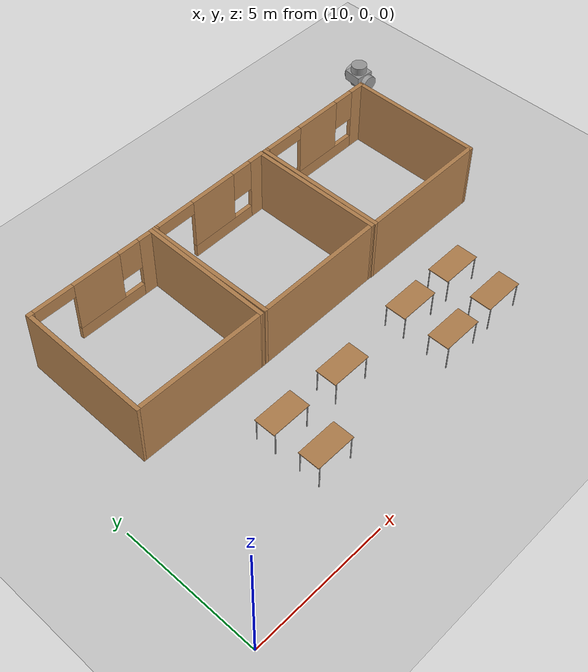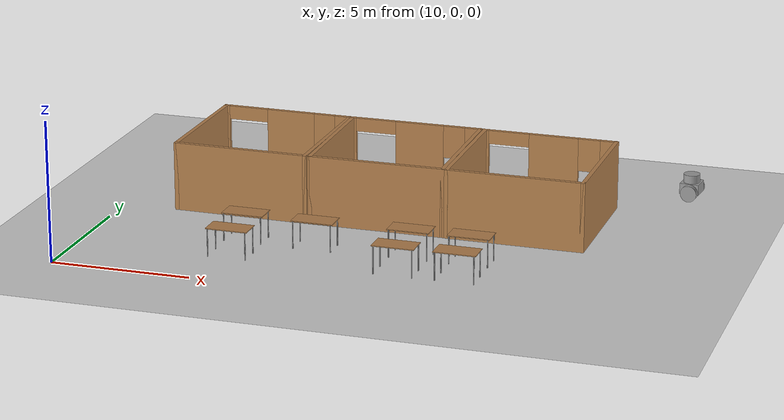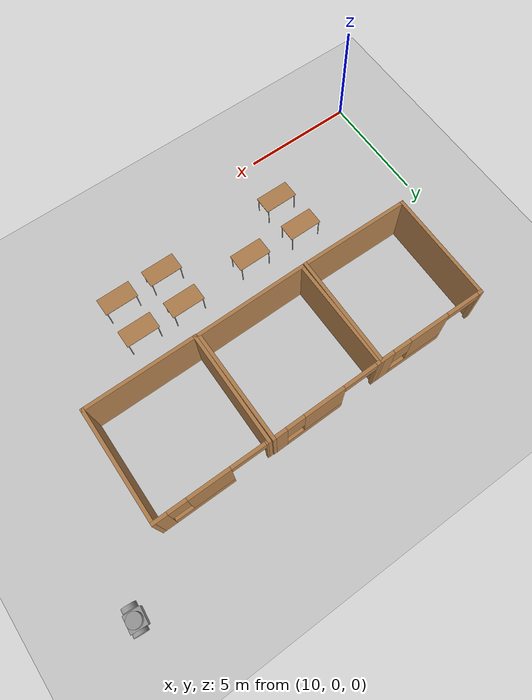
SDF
<sdf version="1.6">
 <world name="default">
  <model name="ground_plane">
   <static>1</static>
   <link name="link">
    <collision name="collision">
     <geometry><plane><normal>0 0 1</normal><size>100 100</size></plane></geometry>
     <surface>
      <contact><collide_bitmask>65535</collide_bitmask></contact>
      <friction><ode><mu>100</mu><mu2>50</mu2></ode></friction>
     </surface>
    </collision>
    <visual name="visual">
     <cast_shadows>0</cast_shadows>
     <geometry><plane><normal>0 0 1</normal><size>100 100</size></plane></geometry>
     <material>
      <script><uri>file://media/materials/scripts/gazebo.material</uri><name>Gazebo/Grey</name></script>
     </material>
    </visual>
   </link>
  </model>
  <model name="studio_2">
   <pose>14.4518 8.89939 0 0 -0 3.13147</pose>
   <link name="Wall_10">
    <collision name="Wall_10_Collision">
     <geometry><box><size>5 0.15 2.5</size></box></geometry>
     <pose>0 0 1.25 0 -0 0</pose>
    </collision>
    <visual name="Wall_10_Visual">
     <pose>0 0 1.25 0 -0 0</pose>
     <geometry><box><size>5 0.15 2.5</size></box></geometry>
     <material>
      <script><uri>file://media/materials/scripts/gazebo.material</uri><name>Gazebo/Wood</name></script>
      <ambient>1 1 1 1</ambient>
     </material>
     <meta><layer>0</layer></meta>
    </visual>
    <pose>0 2.42482 0 0 0 -7.3e-05</pose>
   </link>
   <link name="Wall_13">
    <collision name="Wall_13_Collision">
     <geometry><box><size>5 0.15 2.5</size></box></geometry>
     <pose>0 0 1.25 0 -0 0</pose>
    </collision>
    <visual name="Wall_13_Visual">
     <pose>0 0 1.25 0 -0 0</pose>
     <geometry><box><size>5 0.15 2.5</size></box></geometry>
     <material>
      <script><uri>file://media/materials/scripts/gazebo.material</uri><name>Gazebo/Wood</name></script>
      <ambient>1 1 1 1</ambient>
     </material>
     <meta><layer>0</layer></meta>
    </visual>
    <pose>-2.42502 -3e-06 0 0 0 -1.5708</pose>
   </link>
   <link name="Wall_15">
    <pose>-2e-05 -2.425 0 0 -0 0</pose>
    <visual name="Wall_15_Visual_0">
     <pose>-2.17395 0 1.25 0 -0 0</pose>
     <geometry><box><size>0.652095 0.15 2.5</size></box></geometry>
     <material>
      <script><uri>file://media/materials/scripts/gazebo.material</uri><name>Gazebo/Wood</name></script>
      <ambient>1 1 1 1</ambient>
     </material>
     <meta><layer>0</layer></meta>
    </visual>
    <collision name="Wall_15_Collision_0">
     <geometry><box><size>0.652095 0.15 2.5</size></box></geometry>
     <pose>-2.17395 0 1.25 0 -0 0</pose>
    </collision>
    <visual name="Wall_15_Visual_1">
     <pose>2.38574 0 1.25 0 -0 0</pose>
     <geometry><box><size>0.228515 0.15 2.5</size></box></geometry>
     <material>
      <script><uri>file://media/materials/scripts/gazebo.material</uri><name>Gazebo/Wood</name></script>
      <ambient>1 1 1 1</ambient>
     </material>
     <meta><layer>0</layer></meta>
    </visual>
    <collision name="Wall_15_Collision_1">
     <geometry><box><size>0.228515 0.15 2.5</size></box></geometry>
     <pose>2.38574 0 1.25 0 -0 0</pose>
    </collision>
    <visual name="Wall_15_Visual_2">
     <pose>-0.53821 0 0.25 0 -0 0</pose>
     <geometry><box><size>2.61939 0.15 0.5</size></box></geometry>
     <material>
      <script><uri>file://media/materials/scripts/gazebo.material</uri><name>Gazebo/Wood</name></script>
      <ambient>1 1 1 1</ambient>
     </material>
     <meta><layer>0</layer></meta>
    </visual>
    <collision name="Wall_15_Collision_2">
     <geometry><box><size>2.61939 0.15 0.5</size></box></geometry>
     <pose>-0.53821 0 0.25 0 -0 0</pose>
    </collision>
    <visual name="Wall_15_Visual_3">
     <pose>-0.13821 0 1.5 0 -0 0</pose>
     <geometry><box><size>1.81939 0.15 2</size></box></geometry>
     <material>
      <script><uri>file://media/materials/scripts/gazebo.material</uri><name>Gazebo/Wood</name></script>
      <ambient>1 1 1 1</ambient>
     </material>
     <meta><layer>0</layer></meta>
    </visual>
    <collision name="Wall_15_Collision_3">
     <geometry><box><size>1.81939 0.15 2</size></box></geometry>
     <pose>-0.13821 0 1.5 0 -0 0</pose>
    </collision>
    <visual name="Wall_15_Visual_4">
     <pose>-1.4479 0 1.9 0 -0 0</pose>
     <geometry><box><size>0.8 0.15 1.2</size></box></geometry>
     <material>
      <script><uri>file://media/materials/scripts/gazebo.material</uri><name>Gazebo/Wood</name></script>
      <ambient>1 1 1 1</ambient>
     </material>
     <meta><layer>0</layer></meta>
    </visual>
    <collision name="Wall_15_Collision_4">
     <geometry><box><size>0.8 0.15 1.2</size></box></geometry>
     <pose>-1.4479 0 1.9 0 -0 0</pose>
    </collision>
    <visual name="Wall_15_Visual_5">
     <pose>1.52148 0 2.25 0 -0 0</pose>
     <geometry><box><size>1.5 0.15 0.5</size></box></geometry>
     <material>
      <script><uri>file://media/materials/scripts/gazebo.material</uri><name>Gazebo/Wood</name></script>
      <ambient>1 1 1 1</ambient>
     </material>
     <meta><layer>0</layer></meta>
    </visual>
    <collision name="Wall_15_Collision_5">
     <geometry><box><size>1.5 0.15 0.5</size></box></geometry>
     <pose>1.52148 0 2.25 0 -0 0</pose>
    </collision>
   </link>
   <link name="Wall_16">
    <collision name="Wall_16_Collision">
     <geometry><box><size>4.99965 0.15 2.5</size></box></geometry>
     <pose>0 0 1.25 0 -0 0</pose>
    </collision>
    <visual name="Wall_16_Visual">
     <pose>0 0 1.25 0 -0 0</pose>
     <geometry><box><size>4.99965 0.15 2.5</size></box></geometry>
     <material>
      <script><uri>file://media/materials/scripts/gazebo.material</uri><name>Gazebo/Wood</name></script>
      <ambient>1 1 1 1</ambient>
     </material>
     <meta><layer>0</layer></meta>
    </visual>
    <pose>2.425 -0.00018 0 0 -0 1.57079</pose>
   </link>
   <static>1</static>
  </model>
  <model name="studio_3">
   <pose>19.4488 8.8882 0 0 0 -3.13599</pose>
   <link name="Wall_10">
    <collision name="Wall_10_Collision">
     <geometry><box><size>5 0.15 2.5</size></box></geometry>
     <pose>0 0 1.25 0 -0 0</pose>
    </collision>
    <visual name="Wall_10_Visual">
     <pose>0 0 1.25 0 -0 0</pose>
     <geometry><box><size>5 0.15 2.5</size></box></geometry>
     <material>
      <script><uri>file://media/materials/scripts/gazebo.material</uri><name>Gazebo/Wood</name></script>
      <ambient>1 1 1 1</ambient>
     </material>
     <meta><layer>0</layer></meta>
    </visual>
    <pose>0 2.42482 0 0 0 -7.3e-05</pose>
   </link>
   <link name="Wall_13">
    <collision name="Wall_13_Collision">
     <geometry><box><size>5 0.15 2.5</size></box></geometry>
     <pose>0 0 1.25 0 -0 0</pose>
    </collision>
    <visual name="Wall_13_Visual">
     <pose>0 0 1.25 0 -0 0</pose>
     <geometry><box><size>5 0.15 2.5</size></box></geometry>
     <material>
      <script><uri>file://media/materials/scripts/gazebo.material</uri><name>Gazebo/Wood</name></script>
      <ambient>1 1 1 1</ambient>
     </material>
     <meta><layer>0</layer></meta>
    </visual>
    <pose>-2.42502 -3e-06 0 0 0 -1.5708</pose>
   </link>
   <link name="Wall_15">
    <pose>-2e-05 -2.425 0 0 -0 0</pose>
    <visual name="Wall_15_Visual_0">
     <pose>-2.17395 0 1.25 0 -0 0</pose>
     <geometry><box><size>0.652095 0.15 2.5</size></box></geometry>
     <material>
      <script><uri>file://media/materials/scripts/gazebo.material</uri><name>Gazebo/Wood</name></script>
      <ambient>1 1 1 1</ambient>
     </material>
     <meta><layer>0</layer></meta>
    </visual>
    <collision name="Wall_15_Collision_0">
     <geometry><box><size>0.652095 0.15 2.5</size></box></geometry>
     <pose>-2.17395 0 1.25 0 -0 0</pose>
    </collision>
    <visual name="Wall_15_Visual_1">
     <pose>2.38574 0 1.25 0 -0 0</pose>
     <geometry><box><size>0.228515 0.15 2.5</size></box></geometry>
     <material>
      <script><uri>file://media/materials/scripts/gazebo.material</uri><name>Gazebo/Wood</name></script>
      <ambient>1 1 1 1</ambient>
     </material>
     <meta><layer>0</layer></meta>
    </visual>
    <collision name="Wall_15_Collision_1">
     <geometry><box><size>0.228515 0.15 2.5</size></box></geometry>
     <pose>2.38574 0 1.25 0 -0 0</pose>
    </collision>
    <visual name="Wall_15_Visual_2">
     <pose>-0.53821 0 0.25 0 -0 0</pose>
     <geometry><box><size>2.61939 0.15 0.5</size></box></geometry>
     <material>
      <script><uri>file://media/materials/scripts/gazebo.material</uri><name>Gazebo/Wood</name></script>
      <ambient>1 1 1 1</ambient>
     </material>
     <meta><layer>0</layer></meta>
    </visual>
    <collision name="Wall_15_Collision_2">
     <geometry><box><size>2.61939 0.15 0.5</size></box></geometry>
     <pose>-0.53821 0 0.25 0 -0 0</pose>
    </collision>
    <visual name="Wall_15_Visual_3">
     <pose>-0.13821 0 1.5 0 -0 0</pose>
     <geometry><box><size>1.81939 0.15 2</size></box></geometry>
     <material>
      <script><uri>file://media/materials/scripts/gazebo.material</uri><name>Gazebo/Wood</name></script>
      <ambient>1 1 1 1</ambient>
     </material>
     <meta><layer>0</layer></meta>
    </visual>
    <collision name="Wall_15_Collision_3">
     <geometry><box><size>1.81939 0.15 2</size></box></geometry>
     <pose>-0.13821 0 1.5 0 -0 0</pose>
    </collision>
    <visual name="Wall_15_Visual_4">
     <pose>-1.4479 0 1.9 0 -0 0</pose>
     <geometry><box><size>0.8 0.15 1.2</size></box></geometry>
     <material>
      <script><uri>file://media/materials/scripts/gazebo.material</uri><name>Gazebo/Wood</name></script>
      <ambient>1 1 1 1</ambient>
     </material>
     <meta><layer>0</layer></meta>
    </visual>
    <collision name="Wall_15_Collision_4">
     <geometry><box><size>0.8 0.15 1.2</size></box></geometry>
     <pose>-1.4479 0 1.9 0 -0 0</pose>
    </collision>
    <visual name="Wall_15_Visual_5">
     <pose>1.52148 0 2.25 0 -0 0</pose>
     <geometry><box><size>1.5 0.15 0.5</size></box></geometry>
     <material>
      <script><uri>file://media/materials/scripts/gazebo.material</uri><name>Gazebo/Wood</name></script>
      <ambient>1 1 1 1</ambient>
     </material>
     <meta><layer>0</layer></meta>
    </visual>
    <collision name="Wall_15_Collision_5">
     <geometry><box><size>1.5 0.15 0.5</size></box></geometry>
     <pose>1.52148 0 2.25 0 -0 0</pose>
    </collision>
   </link>
   <link name="Wall_16">
    <collision name="Wall_16_Collision">
     <geometry><box><size>4.99965 0.15 2.5</size></box></geometry>
     <pose>0 0 1.25 0 -0 0</pose>
    </collision>
    <visual name="Wall_16_Visual">
     <pose>0 0 1.25 0 -0 0</pose>
     <geometry><box><size>4.99965 0.15 2.5</size></box></geometry>
     <material>
      <script><uri>file://media/materials/scripts/gazebo.material</uri><name>Gazebo/Wood</name></script>
      <ambient>1 1 1 1</ambient>
     </material>
     <meta><layer>0</layer></meta>
    </visual>
    <pose>2.425 -0.00018 0 0 -0 1.57079</pose>
   </link>
   <static>1</static>
  </model>
  <model name="studio_4">
   <pose>24.4587 8.87701 0 0 -0 3.14047</pose>
   <link name="Wall_10">
    <collision name="Wall_10_Collision">
     <geometry><box><size>5 0.15 2.5</size></box></geometry>
     <pose>0 0 1.25 0 -0 0</pose>
    </collision>
    <visual name="Wall_10_Visual">
     <pose>0 0 1.25 0 -0 0</pose>
     <geometry><box><size>5 0.15 2.5</size></box></geometry>
     <material>
      <script><uri>file://media/materials/scripts/gazebo.material</uri><name>Gazebo/Wood</name></script>
      <ambient>1 1 1 1</ambient>
     </material>
     <meta><layer>0</layer></meta>
    </visual>
    <pose>0 2.42482 0 0 0 -7.3e-05</pose>
   </link>
   <link name="Wall_13">
    <collision name="Wall_13_Collision">
     <geometry><box><size>5 0.15 2.5</size></box></geometry>
     <pose>0 0 1.25 0 -0 0</pose>
    </collision>
    <visual name="Wall_13_Visual">
     <pose>0 0 1.25 0 -0 0</pose>
     <geometry><box><size>5 0.15 2.5</size></box></geometry>
     <material>
      <script><uri>file://media/materials/scripts/gazebo.material</uri><name>Gazebo/Wood</name></script>
      <ambient>1 1 1 1</ambient>
     </material>
     <meta><layer>0</layer></meta>
    </visual>
    <pose>-2.42502 -3e-06 0 0 0 -1.5708</pose>
   </link>
   <link name="Wall_15">
    <pose>-2e-05 -2.425 0 0 -0 0</pose>
    <visual name="Wall_15_Visual_0">
     <pose>-2.17395 0 1.25 0 -0 0</pose>
     <geometry><box><size>0.652095 0.15 2.5</size></box></geometry>
     <material>
      <script><uri>file://media/materials/scripts/gazebo.material</uri><name>Gazebo/Wood</name></script>
      <ambient>1 1 1 1</ambient>
     </material>
     <meta><layer>0</layer></meta>
    </visual>
    <collision name="Wall_15_Collision_0">
     <geometry><box><size>0.652095 0.15 2.5</size></box></geometry>
     <pose>-2.17395 0 1.25 0 -0 0</pose>
    </collision>
    <visual name="Wall_15_Visual_1">
     <pose>2.38574 0 1.25 0 -0 0</pose>
     <geometry><box><size>0.228515 0.15 2.5</size></box></geometry>
     <material>
      <script><uri>file://media/materials/scripts/gazebo.material</uri><name>Gazebo/Wood</name></script>
      <ambient>1 1 1 1</ambient>
     </material>
     <meta><layer>0</layer></meta>
    </visual>
    <collision name="Wall_15_Collision_1">
     <geometry><box><size>0.228515 0.15 2.5</size></box></geometry>
     <pose>2.38574 0 1.25 0 -0 0</pose>
    </collision>
    <visual name="Wall_15_Visual_2">
     <pose>-0.53821 0 0.25 0 -0 0</pose>
     <geometry><box><size>2.61939 0.15 0.5</size></box></geometry>
     <material>
      <script><uri>file://media/materials/scripts/gazebo.material</uri><name>Gazebo/Wood</name></script>
      <ambient>1 1 1 1</ambient>
     </material>
     <meta><layer>0</layer></meta>
    </visual>
    <collision name="Wall_15_Collision_2">
     <geometry><box><size>2.61939 0.15 0.5</size></box></geometry>
     <pose>-0.53821 0 0.25 0 -0 0</pose>
    </collision>
    <visual name="Wall_15_Visual_3">
     <pose>-0.13821 0 1.5 0 -0 0</pose>
     <geometry><box><size>1.81939 0.15 2</size></box></geometry>
     <material>
      <script><uri>file://media/materials/scripts/gazebo.material</uri><name>Gazebo/Wood</name></script>
      <ambient>1 1 1 1</ambient>
     </material>
     <meta><layer>0</layer></meta>
    </visual>
    <collision name="Wall_15_Collision_3">
     <geometry><box><size>1.81939 0.15 2</size></box></geometry>
     <pose>-0.13821 0 1.5 0 -0 0</pose>
    </collision>
    <visual name="Wall_15_Visual_4">
     <pose>-1.4479 0 1.9 0 -0 0</pose>
     <geometry><box><size>0.8 0.15 1.2</size></box></geometry>
     <material>
      <script><uri>file://media/materials/scripts/gazebo.material</uri><name>Gazebo/Wood</name></script>
      <ambient>1 1 1 1</ambient>
     </material>
     <meta><layer>0</layer></meta>
    </visual>
    <collision name="Wall_15_Collision_4">
     <geometry><box><size>0.8 0.15 1.2</size></box></geometry>
     <pose>-1.4479 0 1.9 0 -0 0</pose>
    </collision>
    <visual name="Wall_15_Visual_5">
     <pose>1.52148 0 2.25 0 -0 0</pose>
     <geometry><box><size>1.5 0.15 0.5</size></box></geometry>
     <material>
      <script><uri>file://media/materials/scripts/gazebo.material</uri><name>Gazebo/Wood</name></script>
      <ambient>1 1 1 1</ambient>
     </material>
     <meta><layer>0</layer></meta>
    </visual>
    <collision name="Wall_15_Collision_5">
     <geometry><box><size>1.5 0.15 0.5</size></box></geometry>
     <pose>1.52148 0 2.25 0 -0 0</pose>
    </collision>
   </link>
   <link name="Wall_16">
    <collision name="Wall_16_Collision">
     <geometry><box><size>4.99965 0.15 2.5</size></box></geometry>
     <pose>0 0 1.25 0 -0 0</pose>
    </collision>
    <visual name="Wall_16_Visual">
     <pose>0 0 1.25 0 -0 0</pose>
     <geometry><box><size>4.99965 0.15 2.5</size></box></geometry>
     <material>
      <script><uri>file://media/materials/scripts/gazebo.material</uri><name>Gazebo/Wood</name></script>
      <ambient>1 1 1 1</ambient>
     </material>
     <meta><layer>0</layer></meta>
    </visual>
    <pose>2.425 -0.00018 0 0 -0 1.57079</pose>
   </link>
   <static>1</static>
  </model>
  <model name="table_1">
   <static>1</static>
   <link name="link">
    <collision name="surface">
     <pose>0 0 1 0 -0 0</pose>
     <geometry><box><size>1.5 0.8 0.03</size></box></geometry>
     <surface><friction><ode><mu>0.6</mu><mu2>0.6</mu2></ode></friction></surface>
    </collision>
    <visual name="visual1">
     <pose>0 0 1 0 -0 0</pose>
     <geometry><box><size>1.5 0.8 0.03</size></box></geometry>
     <material>
      <script><uri>file://media/materials/scripts/gazebo.material</uri><name>Gazebo/Wood</name></script>
     </material>
    </visual>
    <collision name="front_left_leg">
     <pose>0.68 0.38 0.5 0 -0 0</pose>
     <geometry><cylinder><radius>0.02</radius><length>1</length></cylinder></geometry>
    </collision>
    <visual name="front_left_leg">
     <pose>0.68 0.38 0.5 0 -0 0</pose>
     <geometry><cylinder><radius>0.02</radius><length>1</length></cylinder></geometry>
     <material>
      <script><uri>file://media/materials/scripts/gazebo.material</uri><name>Gazebo/Grey</name></script>
     </material>
    </visual>
    <collision name="front_right_leg">
     <pose>0.68 -0.38 0.5 0 -0 0</pose>
     <geometry><cylinder><radius>0.02</radius><length>1</length></cylinder></geometry>
    </collision>
    <visual name="front_right_leg">
     <pose>0.68 -0.38 0.5 0 -0 0</pose>
     <geometry><cylinder><radius>0.02</radius><length>1</length></cylinder></geometry>
     <material>
      <script><uri>file://media/materials/scripts/gazebo.material</uri><name>Gazebo/Grey</name></script>
     </material>
    </visual>
    <collision name="back_right_leg">
     <pose>-0.68 -0.38 0.5 0 -0 0</pose>
     <geometry><cylinder><radius>0.02</radius><length>1</length></cylinder></geometry>
    </collision>
    <visual name="back_right_leg">
     <pose>-0.68 -0.38 0.5 0 -0 0</pose>
     <geometry><cylinder><radius>0.02</radius><length>1</length></cylinder></geometry>
     <material>
      <script><uri>file://media/materials/scripts/gazebo.material</uri><name>Gazebo/Grey</name></script>
     </material>
    </visual>
    <collision name="back_left_leg">
     <pose>-0.68 0.38 0.5 0 -0 0</pose>
     <geometry><cylinder><radius>0.02</radius><length>1</length></cylinder></geometry>
    </collision>
    <visual name="back_left_leg">
     <pose>-0.68 0.38 0.5 0 -0 0</pose>
     <geometry><cylinder><radius>0.02</radius><length>1</length></cylinder></geometry>
     <material>
      <script><uri>file://media/materials/scripts/gazebo.material</uri><name>Gazebo/Grey</name></script>
     </material>
    </visual>
   </link>
   <pose>23.5484 2.64432 0 0 -0 0</pose>
  </model>
  <model name="table_2">
   <static>1</static>
   <link name="link">
    <collision name="surface">
     <pose>0 0 1 0 -0 0</pose>
     <geometry><box><size>1.5 0.8 0.03</size></box></geometry>
     <surface><friction><ode><mu>0.6</mu><mu2>0.6</mu2></ode></friction></surface>
    </collision>
    <visual name="visual1">
     <pose>0 0 1 0 -0 0</pose>
     <geometry><box><size>1.5 0.8 0.03</size></box></geometry>
     <material>
      <script><uri>file://media/materials/scripts/gazebo.material</uri><name>Gazebo/Wood</name></script>
     </material>
    </visual>
    <collision name="front_left_leg">
     <pose>0.68 0.38 0.5 0 -0 0</pose>
     <geometry><cylinder><radius>0.02</radius><length>1</length></cylinder></geometry>
    </collision>
    <visual name="front_left_leg">
     <pose>0.68 0.38 0.5 0 -0 0</pose>
     <geometry><cylinder><radius>0.02</radius><length>1</length></cylinder></geometry>
     <material>
      <script><uri>file://media/materials/scripts/gazebo.material</uri><name>Gazebo/Grey</name></script>
     </material>
    </visual>
    <collision name="front_right_leg">
     <pose>0.68 -0.38 0.5 0 -0 0</pose>
     <geometry><cylinder><radius>0.02</radius><length>1</length></cylinder></geometry>
    </collision>
    <visual name="front_right_leg">
     <pose>0.68 -0.38 0.5 0 -0 0</pose>
     <geometry><cylinder><radius>0.02</radius><length>1</length></cylinder></geometry>
     <material>
      <script><uri>file://media/materials/scripts/gazebo.material</uri><name>Gazebo/Grey</name></script>
     </material>
    </visual>
    <collision name="back_right_leg">
     <pose>-0.68 -0.38 0.5 0 -0 0</pose>
     <geometry><cylinder><radius>0.02</radius><length>1</length></cylinder></geometry>
    </collision>
    <visual name="back_right_leg">
     <pose>-0.68 -0.38 0.5 0 -0 0</pose>
     <geometry><cylinder><radius>0.02</radius><length>1</length></cylinder></geometry>
     <material>
      <script><uri>file://media/materials/scripts/gazebo.material</uri><name>Gazebo/Grey</name></script>
     </material>
    </visual>
    <collision name="back_left_leg">
     <pose>-0.68 0.38 0.5 0 -0 0</pose>
     <geometry><cylinder><radius>0.02</radius><length>1</length></cylinder></geometry>
    </collision>
    <visual name="back_left_leg">
     <pose>-0.68 0.38 0.5 0 -0 0</pose>
     <geometry><cylinder><radius>0.02</radius><length>1</length></cylinder></geometry>
     <material>
      <script><uri>file://media/materials/scripts/gazebo.material</uri><name>Gazebo/Grey</name></script>
     </material>
    </visual>
   </link>
   <pose>23.5484 4.32933 0 0 -0 0</pose>
  </model>
  <model name="table_5">
   <static>1</static>
   <link name="link">
    <collision name="surface">
     <pose>0 0 1 0 -0 0</pose>
     <geometry><box><size>1.5 0.8 0.03</size></box></geometry>
     <surface><friction><ode><mu>0.6</mu><mu2>0.6</mu2></ode></friction></surface>
    </collision>
    <visual name="visual1">
     <pose>0 0 1 0 -0 0</pose>
     <geometry><box><size>1.5 0.8 0.03</size></box></geometry>
     <material>
      <script><uri>file://media/materials/scripts/gazebo.material</uri><name>Gazebo/Wood</name></script>
     </material>
    </visual>
    <collision name="front_left_leg">
     <pose>0.68 0.38 0.5 0 -0 0</pose>
     <geometry><cylinder><radius>0.02</radius><length>1</length></cylinder></geometry>
    </collision>
    <visual name="front_left_leg">
     <pose>0.68 0.38 0.5 0 -0 0</pose>
     <geometry><cylinder><radius>0.02</radius><length>1</length></cylinder></geometry>
     <material>
      <script><uri>file://media/materials/scripts/gazebo.material</uri><name>Gazebo/Grey</name></script>
     </material>
    </visual>
    <collision name="front_right_leg">
     <pose>0.68 -0.38 0.5 0 -0 0</pose>
     <geometry><cylinder><radius>0.02</radius><length>1</length></cylinder></geometry>
    </collision>
    <visual name="front_right_leg">
     <pose>0.68 -0.38 0.5 0 -0 0</pose>
     <geometry><cylinder><radius>0.02</radius><length>1</length></cylinder></geometry>
     <material>
      <script><uri>file://media/materials/scripts/gazebo.material</uri><name>Gazebo/Grey</name></script>
     </material>
    </visual>
    <collision name="back_right_leg">
     <pose>-0.68 -0.38 0.5 0 -0 0</pose>
     <geometry><cylinder><radius>0.02</radius><length>1</length></cylinder></geometry>
    </collision>
    <visual name="back_right_leg">
     <pose>-0.68 -0.38 0.5 0 -0 0</pose>
     <geometry><cylinder><radius>0.02</radius><length>1</length></cylinder></geometry>
     <material>
      <script><uri>file://media/materials/scripts/gazebo.material</uri><name>Gazebo/Grey</name></script>
     </material>
    </visual>
    <collision name="back_left_leg">
     <pose>-0.68 0.38 0.5 0 -0 0</pose>
     <geometry><cylinder><radius>0.02</radius><length>1</length></cylinder></geometry>
    </collision>
    <visual name="back_left_leg">
     <pose>-0.68 0.38 0.5 0 -0 0</pose>
     <geometry><cylinder><radius>0.02</radius><length>1</length></cylinder></geometry>
     <material>
      <script><uri>file://media/materials/scripts/gazebo.material</uri><name>Gazebo/Grey</name></script>
     </material>
    </visual>
   </link>
   <pose>21.4065 2.61417 0 0 -0 0</pose>
  </model>
  <model name="table_6">
   <static>1</static>
   <link name="link">
    <collision name="surface">
     <pose>0 0 1 0 -0 0</pose>
     <geometry><box><size>1.5 0.8 0.03</size></box></geometry>
     <surface><friction><ode><mu>0.6</mu><mu2>0.6</mu2></ode></friction></surface>
    </collision>
    <visual name="visual1">
     <pose>0 0 1 0 -0 0</pose>
     <geometry><box><size>1.5 0.8 0.03</size></box></geometry>
     <material>
      <script><uri>file://media/materials/scripts/gazebo.material</uri><name>Gazebo/Wood</name></script>
     </material>
    </visual>
    <collision name="front_left_leg">
     <pose>0.68 0.38 0.5 0 -0 0</pose>
     <geometry><cylinder><radius>0.02</radius><length>1</length></cylinder></geometry>
    </collision>
    <visual name="front_left_leg">
     <pose>0.68 0.38 0.5 0 -0 0</pose>
     <geometry><cylinder><radius>0.02</radius><length>1</length></cylinder></geometry>
     <material>
      <script><uri>file://media/materials/scripts/gazebo.material</uri><name>Gazebo/Grey</name></script>
     </material>
    </visual>
    <collision name="front_right_leg">
     <pose>0.68 -0.38 0.5 0 -0 0</pose>
     <geometry><cylinder><radius>0.02</radius><length>1</length></cylinder></geometry>
    </collision>
    <visual name="front_right_leg">
     <pose>0.68 -0.38 0.5 0 -0 0</pose>
     <geometry><cylinder><radius>0.02</radius><length>1</length></cylinder></geometry>
     <material>
      <script><uri>file://media/materials/scripts/gazebo.material</uri><name>Gazebo/Grey</name></script>
     </material>
    </visual>
    <collision name="back_right_leg">
     <pose>-0.68 -0.38 0.5 0 -0 0</pose>
     <geometry><cylinder><radius>0.02</radius><length>1</length></cylinder></geometry>
    </collision>
    <visual name="back_right_leg">
     <pose>-0.68 -0.38 0.5 0 -0 0</pose>
     <geometry><cylinder><radius>0.02</radius><length>1</length></cylinder></geometry>
     <material>
      <script><uri>file://media/materials/scripts/gazebo.material</uri><name>Gazebo/Grey</name></script>
     </material>
    </visual>
    <collision name="back_left_leg">
     <pose>-0.68 0.38 0.5 0 -0 0</pose>
     <geometry><cylinder><radius>0.02</radius><length>1</length></cylinder></geometry>
    </collision>
    <visual name="back_left_leg">
     <pose>-0.68 0.38 0.5 0 -0 0</pose>
     <geometry><cylinder><radius>0.02</radius><length>1</length></cylinder></geometry>
     <material>
      <script><uri>file://media/materials/scripts/gazebo.material</uri><name>Gazebo/Grey</name></script>
     </material>
    </visual>
   </link>
   <pose>21.4065 4.32933 0 0 -0 0</pose>
  </model>
  <model name="table_clone_clone_clone_clone">
   <static>1</static>
   <link name="link">
    <collision name="surface">
     <pose>0 0 1 0 -0 0</pose>
     <geometry><box><size>1.5 0.8 0.03</size></box></geometry>
     <surface><friction><ode><mu>0.6</mu><mu2>0.6</mu2></ode></friction></surface>
    </collision>
    <visual name="visual1">
     <pose>0 0 1 0 -0 0</pose>
     <geometry><box><size>1.5 0.8 0.03</size></box></geometry>
     <material>
      <script><uri>file://media/materials/scripts/gazebo.material</uri><name>Gazebo/Wood</name></script>
     </material>
    </visual>
    <collision name="front_left_leg">
     <pose>0.68 0.38 0.5 0 -0 0</pose>
     <geometry><cylinder><radius>0.02</radius><length>1</length></cylinder></geometry>
    </collision>
    <visual name="front_left_leg">
     <pose>0.68 0.38 0.5 0 -0 0</pose>
     <geometry><cylinder><radius>0.02</radius><length>1</length></cylinder></geometry>
     <material>
      <script><uri>file://media/materials/scripts/gazebo.material</uri><name>Gazebo/Grey</name></script>
     </material>
    </visual>
    <collision name="front_right_leg">
     <pose>0.68 -0.38 0.5 0 -0 0</pose>
     <geometry><cylinder><radius>0.02</radius><length>1</length></cylinder></geometry>
    </collision>
    <visual name="front_right_leg">
     <pose>0.68 -0.38 0.5 0 -0 0</pose>
     <geometry><cylinder><radius>0.02</radius><length>1</length></cylinder></geometry>
     <material>
      <script><uri>file://media/materials/scripts/gazebo.material</uri><name>Gazebo/Grey</name></script>
     </material>
    </visual>
    <collision name="back_right_leg">
     <pose>-0.68 -0.38 0.5 0 -0 0</pose>
     <geometry><cylinder><radius>0.02</radius><length>1</length></cylinder></geometry>
    </collision>
    <visual name="back_right_leg">
     <pose>-0.68 -0.38 0.5 0 -0 0</pose>
     <geometry><cylinder><radius>0.02</radius><length>1</length></cylinder></geometry>
     <material>
      <script><uri>file://media/materials/scripts/gazebo.material</uri><name>Gazebo/Grey</name></script>
     </material>
    </visual>
    <collision name="back_left_leg">
     <pose>-0.68 0.38 0.5 0 -0 0</pose>
     <geometry><cylinder><radius>0.02</radius><length>1</length></cylinder></geometry>
    </collision>
    <visual name="back_left_leg">
     <pose>-0.68 0.38 0.5 0 -0 0</pose>
     <geometry><cylinder><radius>0.02</radius><length>1</length></cylinder></geometry>
     <material>
      <script><uri>file://media/materials/scripts/gazebo.material</uri><name>Gazebo/Grey</name></script>
     </material>
    </visual>
   </link>
   <pose>18.0095 4.16806 0 0 -0 0</pose>
  </model>
  <model name="table_7">
   <static>1</static>
   <link name="link">
    <collision name="surface">
     <pose>0 0 1 0 -0 0</pose>
     <geometry><box><size>1.5 0.8 0.03</size></box></geometry>
     <surface><friction><ode><mu>0.6</mu><mu2>0.6</mu2></ode></friction></surface>
    </collision>
    <visual name="visual1">
     <pose>0 0 1 0 -0 0</pose>
     <geometry><box><size>1.5 0.8 0.03</size></box></geometry>
     <material>
      <script><uri>file://media/materials/scripts/gazebo.material</uri><name>Gazebo/Wood</name></script>
     </material>
    </visual>
    <collision name="front_left_leg">
     <pose>0.68 0.38 0.5 0 -0 0</pose>
     <geometry><cylinder><radius>0.02</radius><length>1</length></cylinder></geometry>
    </collision>
    <visual name="front_left_leg">
     <pose>0.68 0.38 0.5 0 -0 0</pose>
     <geometry><cylinder><radius>0.02</radius><length>1</length></cylinder></geometry>
     <material>
      <script><uri>file://media/materials/scripts/gazebo.material</uri><name>Gazebo/Grey</name></script>
     </material>
    </visual>
    <collision name="front_right_leg">
     <pose>0.68 -0.38 0.5 0 -0 0</pose>
     <geometry><cylinder><radius>0.02</radius><length>1</length></cylinder></geometry>
    </collision>
    <visual name="front_right_leg">
     <pose>0.68 -0.38 0.5 0 -0 0</pose>
     <geometry><cylinder><radius>0.02</radius><length>1</length></cylinder></geometry>
     <material>
      <script><uri>file://media/materials/scripts/gazebo.material</uri><name>Gazebo/Grey</name></script>
     </material>
    </visual>
    <collision name="back_right_leg">
     <pose>-0.68 -0.38 0.5 0 -0 0</pose>
     <geometry><cylinder><radius>0.02</radius><length>1</length></cylinder></geometry>
    </collision>
    <visual name="back_right_leg">
     <pose>-0.68 -0.38 0.5 0 -0 0</pose>
     <geometry><cylinder><radius>0.02</radius><length>1</length></cylinder></geometry>
     <material>
      <script><uri>file://media/materials/scripts/gazebo.material</uri><name>Gazebo/Grey</name></script>
     </material>
    </visual>
    <collision name="back_left_leg">
     <pose>-0.68 0.38 0.5 0 -0 0</pose>
     <geometry><cylinder><radius>0.02</radius><length>1</length></cylinder></geometry>
    </collision>
    <visual name="back_left_leg">
     <pose>-0.68 0.38 0.5 0 -0 0</pose>
     <geometry><cylinder><radius>0.02</radius><length>1</length></cylinder></geometry>
     <material>
      <script><uri>file://media/materials/scripts/gazebo.material</uri><name>Gazebo/Grey</name></script>
     </material>
    </visual>
   </link>
   <pose>15.5079 2.54393 0 0 -0 0</pose>
  </model>
  <model name="table_8">
   <static>1</static>
   <link name="link">
    <collision name="surface">
     <pose>0 0 1 0 -0 0</pose>
     <geometry><box><size>1.5 0.8 0.03</size></box></geometry>
     <surface><friction><ode><mu>0.6</mu><mu2>0.6</mu2></ode></friction></surface>
    </collision>
    <visual name="visual1">
     <pose>0 0 1 0 -0 0</pose>
     <geometry><box><size>1.5 0.8 0.03</size></box></geometry>
     <material>
      <script><uri>file://media/materials/scripts/gazebo.material</uri><name>Gazebo/Wood</name></script>
     </material>
    </visual>
    <collision name="front_left_leg">
     <pose>0.68 0.38 0.5 0 -0 0</pose>
     <geometry><cylinder><radius>0.02</radius><length>1</length></cylinder></geometry>
    </collision>
    <visual name="front_left_leg">
     <pose>0.68 0.38 0.5 0 -0 0</pose>
     <geometry><cylinder><radius>0.02</radius><length>1</length></cylinder></geometry>
     <material>
      <script><uri>file://media/materials/scripts/gazebo.material</uri><name>Gazebo/Grey</name></script>
     </material>
    </visual>
    <collision name="front_right_leg">
     <pose>0.68 -0.38 0.5 0 -0 0</pose>
     <geometry><cylinder><radius>0.02</radius><length>1</length></cylinder></geometry>
    </collision>
    <visual name="front_right_leg">
     <pose>0.68 -0.38 0.5 0 -0 0</pose>
     <geometry><cylinder><radius>0.02</radius><length>1</length></cylinder></geometry>
     <material>
      <script><uri>file://media/materials/scripts/gazebo.material</uri><name>Gazebo/Grey</name></script>
     </material>
    </visual>
    <collision name="back_right_leg">
     <pose>-0.68 -0.38 0.5 0 -0 0</pose>
     <geometry><cylinder><radius>0.02</radius><length>1</length></cylinder></geometry>
    </collision>
    <visual name="back_right_leg">
     <pose>-0.68 -0.38 0.5 0 -0 0</pose>
     <geometry><cylinder><radius>0.02</radius><length>1</length></cylinder></geometry>
     <material>
      <script><uri>file://media/materials/scripts/gazebo.material</uri><name>Gazebo/Grey</name></script>
     </material>
    </visual>
    <collision name="back_left_leg">
     <pose>-0.68 0.38 0.5 0 -0 0</pose>
     <geometry><cylinder><radius>0.02</radius><length>1</length></cylinder></geometry>
    </collision>
    <visual name="back_left_leg">
     <pose>-0.68 0.38 0.5 0 -0 0</pose>
     <geometry><cylinder><radius>0.02</radius><length>1</length></cylinder></geometry>
     <material>
      <script><uri>file://media/materials/scripts/gazebo.material</uri><name>Gazebo/Grey</name></script>
     </material>
    </visual>
   </link>
   <pose>15.4522 4.23346 0 0 -0 0</pose>
  </model>
  <model name="vacuumrobot_0_clone">
   <link name="link_0">
    <pose>-0.01 -0.018 0.01 0 -0 0</pose>
    <inertial>
     <mass>1</mass>
     <inertia>
      <ixx>0.166667</ixx>
      <ixy>0</ixy>
      <ixz>0</ixz>
      <iyy>0.166667</iyy>
      <iyz>0</iyz>
      <izz>0.166667</izz>
     </inertia>
    </inertial>
    <visual name="visual">
     <geometry><box><size>0.7 0.7 0.4</size></box></geometry>
     <material>
      <lighting>1</lighting>
      <script><uri>file://media/materials/scripts/gazebo.material</uri><name>Gazebo/Grey</name></script>
      <shader type="pixel"><normal_map>__default__</normal_map></shader>
      <ambient>0.3 0.3 0.3 1</ambient>
      <diffuse>0.7 0.7 0.7 1</diffuse>
      <specular>0.01 0.01 0.01 1</specular>
      <emissive>0 0 0 1</emissive>
     </material>
    </visual>
    <collision name="collision">
     <geometry><box><size>0.7 0.7 0.4</size></box></geometry>
     <surface>
      <friction>
       <ode><mu>1</mu><mu2>1</mu2><fdir1>0 0 0</fdir1><slip1>0</slip1><slip2>0</slip2></ode>
       <torsional>
        <coefficient>1</coefficient>
        <patch_radius>0</patch_radius>
        <surface_radius>0</surface_radius>
        <use_patch_radius>1</use_patch_radius>
        <ode><slip>0</slip></ode>
       </torsional>
      </friction>
      <bounce><restitution_coefficient>0</restitution_coefficient><threshold>1e+06</threshold></bounce>
      <contact>
       <collide_without_contact>0</collide_without_contact>
       <collide_without_contact_bitmask>1</collide_without_contact_bitmask>
       <collide_bitmask>1</collide_bitmask>
       <ode>
        <soft_cfm>0</soft_cfm>
        <soft_erp>0.2</soft_erp>
        <kp>1e+13</kp>
        <kd>1</kd>
        <max_vel>0.01</max_vel>
        <min_depth>0</min_depth>
       </ode>
       <bullet>
        <split_impulse>1</split_impulse>
        <split_impulse_penetration_threshold>-0.01</split_impulse_penetration_threshold>
        <soft_cfm>0</soft_cfm>
        <soft_erp>0.2</soft_erp>
        <kp>1e+13</kp>
        <kd>1</kd>
       </bullet>
      </contact>
     </surface>
    </collision>
   </link>
   <link name="link_1">
    <pose>-0.06 0.472029 -0.09 1.5707 -0 0</pose>
    <inertial>
     <mass>1</mass>
     <inertia><ixx>0.145833</ixx><ixy>0</ixy><ixz>0</ixz><iyy>0.145833</iyy><iyz>0</iyz><izz>0.125</izz></inertia>
    </inertial>
    <visual name="visual">
     <geometry><cylinder><radius>0.3</radius><length>0.2</length></cylinder></geometry>
     <material>
      <lighting>1</lighting>
      <script><uri>file://media/materials/scripts/gazebo.material</uri><name>Gazebo/Grey</name></script>
      <shader type="pixel"><normal_map>__default__</normal_map></shader>
      <ambient>0.3 0.3 0.3 1</ambient>
      <diffuse>0.7 0.7 0.7 1</diffuse>
      <specular>0.01 0.01 0.01 1</specular>
      <emissive>0 0 0 1</emissive>
     </material>
    </visual>
    <collision name="collision">
     <geometry><cylinder><radius>0.3</radius><length>0.2</length></cylinder></geometry>
     <surface>
      <friction>
       <ode><mu>1</mu><mu2>1</mu2><fdir1>0 0 0</fdir1><slip1>0</slip1><slip2>0</slip2></ode>
       <torsional>
        <coefficient>1</coefficient>
        <patch_radius>0</patch_radius>
        <surface_radius>0</surface_radius>
        <use_patch_radius>1</use_patch_radius>
        <ode><slip>0</slip></ode>
       </torsional>
      </friction>
      <bounce><restitution_coefficient>0</restitution_coefficient><threshold>1e+06</threshold></bounce>
      <contact>
       <collide_without_contact>0</collide_without_contact>
       <collide_without_contact_bitmask>1</collide_without_contact_bitmask>
       <collide_bitmask>1</collide_bitmask>
       <ode>
        <soft_cfm>0</soft_cfm>
        <soft_erp>0.2</soft_erp>
        <kp>1e+13</kp>
        <kd>1</kd>
        <max_vel>0.01</max_vel>
        <min_depth>0</min_depth>
       </ode>
       <bullet>
        <split_impulse>1</split_impulse>
        <split_impulse_penetration_threshold>-0.01</split_impulse_penetration_threshold>
        <soft_cfm>0</soft_cfm>
        <soft_erp>0.2</soft_erp>
        <kp>1e+13</kp>
        <kd>1</kd>
       </bullet>
      </contact>
     </surface>
    </collision>
   </link>
   <link name="link_1_clone">
    <pose>-0.06 -0.41803 -0.09 1.5707 -0 0</pose>
    <inertial>
     <mass>1</mass>
     <inertia><ixx>0.145833</ixx><ixy>0</ixy><ixz>0</ixz><iyy>0.145833</iyy><iyz>0</iyz><izz>0.125</izz></inertia>
    </inertial>
    <visual name="visual">
     <geometry><cylinder><radius>0.3</radius><length>0.2</length></cylinder></geometry>
     <material>
      <lighting>1</lighting>
      <script><uri>file://media/materials/scripts/gazebo.material</uri><name>Gazebo/Grey</name></script>
      <shader type="pixel"><normal_map>__default__</normal_map></shader>
      <ambient>0.3 0.3 0.3 1</ambient>
      <diffuse>0.7 0.7 0.7 1</diffuse>
      <specular>0.01 0.01 0.01 1</specular>
      <emissive>0 0 0 1</emissive>
     </material>
    </visual>
    <collision name="collision">
     <geometry><cylinder><radius>0.3</radius><length>0.2</length></cylinder></geometry>
     <surface>
      <friction>
       <ode><mu>1</mu><mu2>1</mu2><fdir1>0 0 0</fdir1><slip1>0</slip1><slip2>0</slip2></ode>
       <torsional>
        <coefficient>1</coefficient>
        <patch_radius>0</patch_radius>
        <surface_radius>0</surface_radius>
        <use_patch_radius>1</use_patch_radius>
        <ode><slip>0</slip></ode>
       </torsional>
      </friction>
      <bounce><restitution_coefficient>0</restitution_coefficient><threshold>1e+06</threshold></bounce>
      <contact>
       <collide_without_contact>0</collide_without_contact>
       <collide_without_contact_bitmask>1</collide_without_contact_bitmask>
       <collide_bitmask>1</collide_bitmask>
       <ode>
        <soft_cfm>0</soft_cfm>
        <soft_erp>0.2</soft_erp>
        <kp>1e+13</kp>
        <kd>1</kd>
        <max_vel>0.01</max_vel>
        <min_depth>0</min_depth>
       </ode>
       <bullet>
        <split_impulse>1</split_impulse>
        <split_impulse_penetration_threshold>-0.01</split_impulse_penetration_threshold>
        <soft_cfm>0</soft_cfm>
        <soft_erp>0.2</soft_erp>
        <kp>1e+13</kp>
        <kd>1</kd>
       </bullet>
      </contact>
     </surface>
    </collision>
   </link>
   <link name="link_2">
    <pose>0.14 -0.018 -0.19 0 -0 0</pose>
    <inertial>
     <mass>1</mass>
     <inertia><ixx>0.1</ixx><ixy>0</ixy><ixz>0</ixz><iyy>0.1</iyy><iyz>0</iyz><izz>0.1</izz></inertia>
    </inertial>
    <visual name="visual">
     <geometry><sphere><radius>0.2</radius></sphere></geometry>
     <material>
      <lighting>1</lighting>
      <script><uri>file://media/materials/scripts/gazebo.material</uri><name>Gazebo/Grey</name></script>
      <shader type="pixel"><normal_map>__default__</normal_map></shader>
      <ambient>0.3 0.3 0.3 1</ambient>
      <diffuse>0.7 0.7 0.7 1</diffuse>
      <specular>0.01 0.01 0.01 1</specular>
      <emissive>0 0 0 1</emissive>
     </material>
    </visual>
    <collision name="collision">
     <geometry><sphere><radius>0.2</radius></sphere></geometry>
     <surface>
      <friction>
       <ode><mu>1</mu><mu2>1</mu2><fdir1>0 0 0</fdir1><slip1>0</slip1><slip2>0</slip2></ode>
       <torsional>
        <coefficient>1</coefficient>
        <patch_radius>0</patch_radius>
        <surface_radius>0</surface_radius>
        <use_patch_radius>1</use_patch_radius>
        <ode><slip>0</slip></ode>
       </torsional>
      </friction>
      <bounce><restitution_coefficient>0</restitution_coefficient><threshold>1e+06</threshold></bounce>
      <contact>
       <collide_without_contact>0</collide_without_contact>
       <collide_without_contact_bitmask>1</collide_without_contact_bitmask>
       <collide_bitmask>1</collide_bitmask>
       <ode>
        <soft_cfm>0</soft_cfm>
        <soft_erp>0.2</soft_erp>
        <kp>1e+13</kp>
        <kd>1</kd>
        <max_vel>0.01</max_vel>
        <min_depth>0</min_depth>
       </ode>
       <bullet>
        <split_impulse>1</split_impulse>
        <split_impulse_penetration_threshold>-0.01</split_impulse_penetration_threshold>
        <soft_cfm>0</soft_cfm>
        <soft_erp>0.2</soft_erp>
        <kp>1e+13</kp>
        <kd>1</kd>
       </bullet>
      </contact>
     </surface>
    </collision>
   </link>
   <link name="link_3">
    <pose>-0.01 -0.018 0.36 0 -0 0</pose>
    <inertial>
     <mass>1</mass>
     <inertia><ixx>0.145833</ixx><ixy>0</ixy><ixz>0</ixz><iyy>0.145833</iyy><iyz>0</iyz><izz>0.125</izz></inertia>
    </inertial>
    <visual name="visual">
     <geometry><cylinder><radius>0.3</radius><length>0.3</length></cylinder></geometry>
     <material>
      <lighting>1</lighting>
      <script><uri>file://media/materials/scripts/gazebo.material</uri><name>Gazebo/Grey</name></script>
      <shader type="pixel"><normal_map>__default__</normal_map></shader>
      <ambient>0.3 0.3 0.3 1</ambient>
      <diffuse>0.7 0.7 0.7 1</diffuse>
      <specular>0.01 0.01 0.01 1</specular>
      <emissive>0 0 0 1</emissive>
     </material>
    </visual>
    <collision name="collision">
     <geometry><cylinder><radius>0.3</radius><length>0.3</length></cylinder></geometry>
     <surface>
      <friction>
       <ode><mu>1</mu><mu2>1</mu2><fdir1>0 0 0</fdir1><slip1>0</slip1><slip2>0</slip2></ode>
       <torsional>
        <coefficient>1</coefficient>
        <patch_radius>0</patch_radius>
        <surface_radius>0</surface_radius>
        <use_patch_radius>1</use_patch_radius>
        <ode><slip>0</slip></ode>
       </torsional>
      </friction>
      <bounce><restitution_coefficient>0</restitution_coefficient><threshold>1e+06</threshold></bounce>
      <contact>
       <collide_without_contact>0</collide_without_contact>
       <collide_without_contact_bitmask>1</collide_without_contact_bitmask>
       <collide_bitmask>1</collide_bitmask>
       <ode>
        <soft_cfm>0</soft_cfm>
        <soft_erp>0.2</soft_erp>
        <kp>1e+13</kp>
        <kd>1</kd>
        <max_vel>0.01</max_vel>
        <min_depth>0</min_depth>
       </ode>
       <bullet>
        <split_impulse>1</split_impulse>
        <split_impulse_penetration_threshold>-0.01</split_impulse_penetration_threshold>
        <soft_cfm>0</soft_cfm>
        <soft_erp>0.2</soft_erp>
        <kp>1e+13</kp>
        <kd>1</kd>
       </bullet>
      </contact>
     </surface>
    </collision>
   </link>
   <joint name="link_0_JOINT_2" type="revolute">
    <parent>link_0</parent>
    <child>link_1_clone</child>
    <axis>
     <xyz>0 0 1</xyz>
     <use_parent_model_frame>0</use_parent_model_frame>
     <limit>
      <lower>-1.79769e+308</lower>
      <upper>1.79769e+308</upper>
      <effort>-1</effort>
      <velocity>-1</velocity>
     </limit>
     <dynamics>
      <spring_reference>0</spring_reference>
      <spring_stiffness>0</spring_stiffness>
      <damping>0</damping>
     </dynamics>
    </axis>
    <physics>
     <ode><limit><cfm>0</cfm><erp>0.2</erp></limit><suspension><cfm>0</cfm><erp>0.2</erp></suspension></ode>
    </physics>
   </joint>
   <joint name="link_0_JOINT_4" type="revolute">
    <parent>link_0</parent>
    <child>link_2</child>
    <axis>
     <xyz>1 0 0</xyz>
     <use_parent_model_frame>0</use_parent_model_frame>
     <limit>
      <lower>-1.79769e+308</lower>
      <upper>1.79769e+308</upper>
      <effort>-1</effort>
      <velocity>-1</velocity>
     </limit>
     <dynamics>
      <spring_reference>0</spring_reference>
      <spring_stiffness>0</spring_stiffness>
      <damping>0</damping>
     </dynamics>
    </axis>
    <physics>
     <ode><limit><cfm>0</cfm><erp>0.2</erp></limit><suspension><cfm>0</cfm><erp>0.2</erp></suspension></ode>
    </physics>
   </joint>
   <joint name="link_0_JOINT_7" type="revolute">
    <parent>link_0</parent>
    <child>link_1</child>
    <axis>
     <xyz>0 0 1</xyz>
     <use_parent_model_frame>0</use_parent_model_frame>
     <limit>
      <lower>-1.79769e+308</lower>
      <upper>1.79769e+308</upper>
      <effort>-1</effort>
      <velocity>-1</velocity>
     </limit>
     <dynamics>
      <spring_reference>0</spring_reference>
      <spring_stiffness>0</spring_stiffness>
      <damping>0</damping>
     </dynamics>
    </axis>
    <physics>
     <ode><limit><cfm>0</cfm><erp>0.2</erp></limit><suspension><cfm>0</cfm><erp>0.2</erp></suspension></ode>
    </physics>
   </joint>
   <joint name="link_0_JOINT_8" type="revolute">
    <parent>link_0</parent>
    <child>link_3</child>
    <axis>
     <xyz>0 0 1</xyz>
     <use_parent_model_frame>0</use_parent_model_frame>
     <limit>
      <lower>-1.79769e+308</lower>
      <upper>1.79769e+308</upper>
      <effort>-1</effort>
      <velocity>-1</velocity>
     </limit>
     <dynamics>
      <spring_reference>0</spring_reference>
      <spring_stiffness>0</spring_stiffness>
      <damping>0</damping>
     </dynamics>
    </axis>
    <physics>
     <ode><limit><cfm>0</cfm><erp>0.2</erp></limit><suspension><cfm>0</cfm><erp>0.2</erp></suspension></ode>
    </physics>
   </joint>
   <static>0</static>
   <pose>29.2321 13.3462 0.390007 2e-06 4.5e-05 3.0514</pose>
  </model>
 </world>
</sdf>
